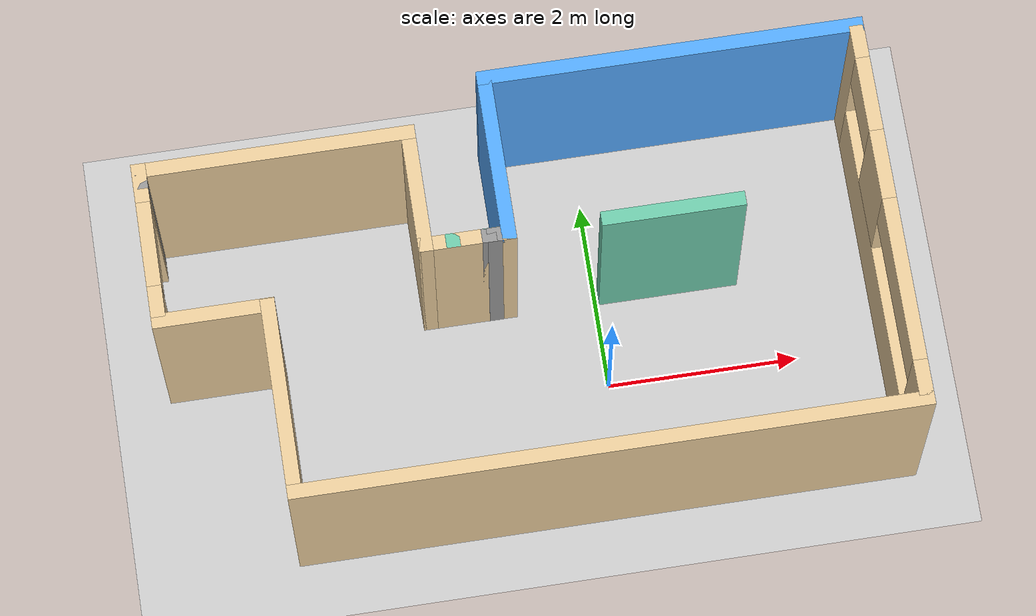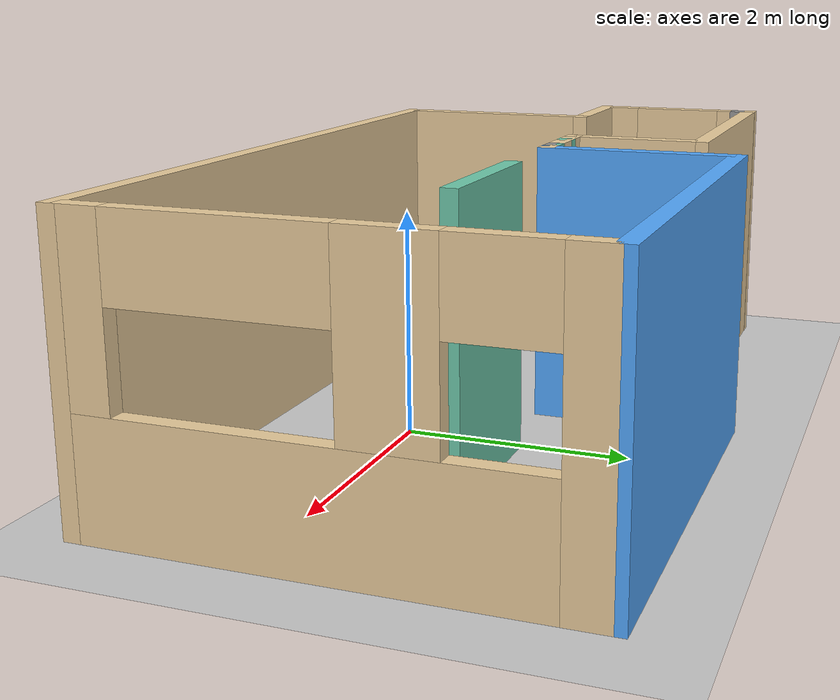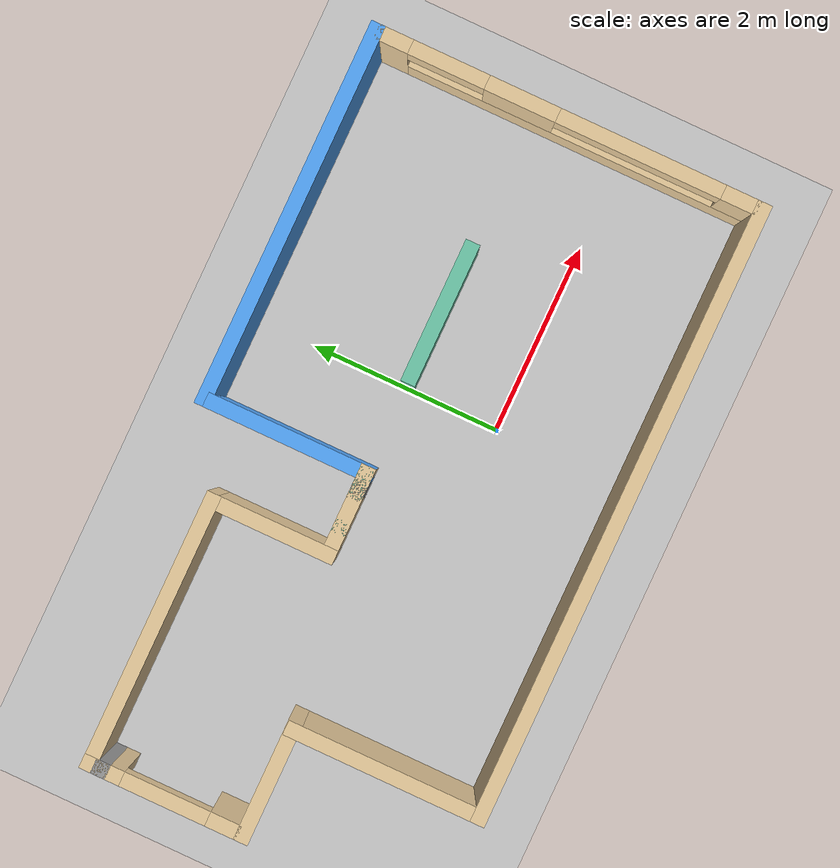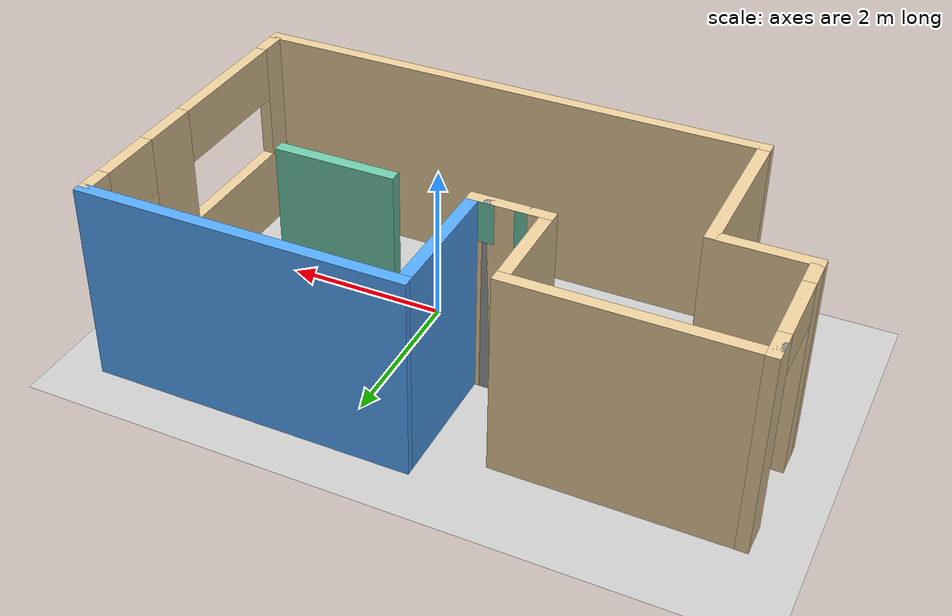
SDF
<sdf version="1.6">
 <world name="default">
  <model name="ground_plane">
   <static>1</static>
   <link name="link">
    <collision name="collision">
     <geometry><plane><normal>0 0 1</normal><size>100 100</size></plane></geometry>
     <surface>
      <contact><collide_bitmask>65535</collide_bitmask></contact>
      <friction><ode><mu>100</mu><mu2>50</mu2></ode></friction>
     </surface>
    </collision>
    <visual name="visual">
     <cast_shadows>0</cast_shadows>
     <geometry><plane><normal>0 0 1</normal><size>100 100</size></plane></geometry>
     <material>
      <script><uri>file://media/materials/scripts/gazebo.material</uri><name>Gazebo/Grey</name></script>
     </material>
    </visual>
   </link>
  </model>
  <model name="my_building">
   <link name="Wall_0">
    <pose>-2.275 1.54483 0 0 -0 0</pose>
    <visual name="Wall_0_Visual">
     <pose>0 0 1.25 0 -0 0</pose>
     <geometry><box><size>2.75 0.15 2.5</size></box></geometry>
     <material>
      <script><uri>file://media/materials/scripts/gazebo.material</uri><name>Gazebo/Grey</name></script>
      <ambient>0.921569 0.807843 0.615686 1</ambient>
      <shader type="pixel"/>
      <diffuse>0.7 0.7 0.7 1</diffuse>
      <specular>0.01 0.01 0.01 1</specular>
      <emissive>0 0 0 1</emissive>
     </material>
     <meta><layer>0</layer></meta>
    </visual>
    <collision name="Wall_0_Collision">
     <pose>0 0 1.25 0 -0 0</pose>
     <geometry><box><size>2.75 0.15 2.5</size></box></geometry>
     <surface>
      <friction>
       <ode><mu>1</mu><mu2>1</mu2><fdir1>0 0 0</fdir1><slip1>0</slip1><slip2>0</slip2></ode>
       <torsional>
        <coefficient>1</coefficient>
        <patch_radius>0</patch_radius>
        <surface_radius>0</surface_radius>
        <use_patch_radius>1</use_patch_radius>
        <ode><slip>0</slip></ode>
       </torsional>
      </friction>
      <bounce><restitution_coefficient>0</restitution_coefficient><threshold>1e+06</threshold></bounce>
      <contact>
       <collide_without_contact>0</collide_without_contact>
       <collide_without_contact_bitmask>1</collide_without_contact_bitmask>
       <collide_bitmask>1</collide_bitmask>
       <ode>
        <soft_cfm>0</soft_cfm>
        <soft_erp>0.2</soft_erp>
        <kp>1e+13</kp>
        <kd>1</kd>
        <max_vel>0.01</max_vel>
        <min_depth>0</min_depth>
       </ode>
       <bullet>
        <split_impulse>1</split_impulse>
        <split_impulse_penetration_threshold>-0.01</split_impulse_penetration_threshold>
        <soft_cfm>0</soft_cfm>
        <soft_erp>0.2</soft_erp>
        <kp>1e+13</kp>
        <kd>1</kd>
       </bullet>
      </contact>
     </surface>
    </collision>
   </link>
   <link name="Wall_1">
    <pose>-0.975 0.875 0 0 0 -1.5708</pose>
    <visual name="Wall_1_Visual">
     <pose>0 0 1.25 0 -0 0</pose>
     <geometry><box><size>1.25 0.15 2.5</size></box></geometry>
     <material>
      <script><uri>file://media/materials/scripts/gazebo.material</uri><name>Gazebo/Grey</name></script>
      <ambient>0.921569 0.807843 0.615686 1</ambient>
      <shader type="pixel"/>
      <diffuse>0.7 0.7 0.7 1</diffuse>
      <specular>0.01 0.01 0.01 1</specular>
      <emissive>0 0 0 1</emissive>
     </material>
     <meta><layer>0</layer></meta>
    </visual>
    <collision name="Wall_1_Collision">
     <pose>0 0 1.25 0 -0 0</pose>
     <geometry><box><size>1.25 0.15 2.5</size></box></geometry>
     <surface>
      <friction>
       <ode><mu>1</mu><mu2>1</mu2><fdir1>0 0 0</fdir1><slip1>0</slip1><slip2>0</slip2></ode>
       <torsional>
        <coefficient>1</coefficient>
        <patch_radius>0</patch_radius>
        <surface_radius>0</surface_radius>
        <use_patch_radius>1</use_patch_radius>
        <ode><slip>0</slip></ode>
       </torsional>
      </friction>
      <bounce><restitution_coefficient>0</restitution_coefficient><threshold>1e+06</threshold></bounce>
      <contact>
       <collide_without_contact>0</collide_without_contact>
       <collide_without_contact_bitmask>1</collide_without_contact_bitmask>
       <collide_bitmask>1</collide_bitmask>
       <ode>
        <soft_cfm>0</soft_cfm>
        <soft_erp>0.2</soft_erp>
        <kp>1e+13</kp>
        <kd>1</kd>
        <max_vel>0.01</max_vel>
        <min_depth>0</min_depth>
       </ode>
       <bullet>
        <split_impulse>1</split_impulse>
        <split_impulse_penetration_threshold>-0.01</split_impulse_penetration_threshold>
        <soft_cfm>0</soft_cfm>
        <soft_erp>0.2</soft_erp>
        <kp>1e+13</kp>
        <kd>1</kd>
       </bullet>
      </contact>
     </surface>
    </collision>
   </link>
   <link name="Wall_10">
    <pose>-3.725 1.425 0 0 -0 0</pose>
    <visual name="Wall_10_Visual">
     <pose>0 0 1.25 0 -0 0</pose>
     <geometry><box><size>0.15 0.15 2.5</size></box></geometry>
     <material>
      <script><uri>file://media/materials/scripts/gazebo.material</uri><name>Gazebo/Grey</name></script>
      <ambient>1 1 1 1</ambient>
      <shader type="pixel"/>
      <diffuse>0.7 0.7 0.7 1</diffuse>
      <specular>0.01 0.01 0.01 1</specular>
      <emissive>0 0 0 1</emissive>
     </material>
     <meta><layer>0</layer></meta>
    </visual>
    <collision name="Wall_10_Collision">
     <pose>0 0 1.25 0 -0 0</pose>
     <geometry><box><size>0.15 0.15 2.5</size></box></geometry>
     <surface>
      <friction>
       <ode><mu>1</mu><mu2>1</mu2><fdir1>0 0 0</fdir1><slip1>0</slip1><slip2>0</slip2></ode>
       <torsional>
        <coefficient>1</coefficient>
        <patch_radius>0</patch_radius>
        <surface_radius>0</surface_radius>
        <use_patch_radius>1</use_patch_radius>
        <ode><slip>0</slip></ode>
       </torsional>
      </friction>
      <bounce><restitution_coefficient>0</restitution_coefficient><threshold>1e+06</threshold></bounce>
      <contact>
       <collide_without_contact>0</collide_without_contact>
       <collide_without_contact_bitmask>1</collide_without_contact_bitmask>
       <collide_bitmask>1</collide_bitmask>
       <ode>
        <soft_cfm>0</soft_cfm>
        <soft_erp>0.2</soft_erp>
        <kp>1e+13</kp>
        <kd>1</kd>
        <max_vel>0.01</max_vel>
        <min_depth>0</min_depth>
       </ode>
       <bullet>
        <split_impulse>1</split_impulse>
        <split_impulse_penetration_threshold>-0.01</split_impulse_penetration_threshold>
        <soft_cfm>0</soft_cfm>
        <soft_erp>0.2</soft_erp>
        <kp>1e+13</kp>
        <kd>1</kd>
       </bullet>
      </contact>
     </surface>
    </collision>
   </link>
   <link name="Wall_12">
    <pose>-3.725 0.796381 0 0 -0 1.5708</pose>
    <visual name="Wall_12_Visual_0">
     <pose>-0.658151 0 1.25 0 -0 0</pose>
     <geometry><box><size>0.333697 0.15 2.5</size></box></geometry>
     <material>
      <script><uri>file://media/materials/scripts/gazebo.material</uri><name>Gazebo/Grey</name></script>
      <ambient>0.921569 0.807843 0.615686 1</ambient>
      <shader type="pixel"/>
      <diffuse>0.7 0.7 0.7 1</diffuse>
      <specular>0.01 0.01 0.01 1</specular>
      <emissive>0 0 0 1</emissive>
     </material>
     <meta><layer>0</layer></meta>
    </visual>
    <visual name="Wall_12_Visual_1">
     <pose>0.616849 0 1.25 0 -0 0</pose>
     <geometry><box><size>0.416303 0.15 2.5</size></box></geometry>
     <material>
      <script><uri>file://media/materials/scripts/gazebo.material</uri><name>Gazebo/Grey</name></script>
      <ambient>0.921569 0.807843 0.615686 1</ambient>
      <shader type="pixel"/>
      <diffuse>0.7 0.7 0.7 1</diffuse>
      <specular>0.01 0.01 0.01 1</specular>
      <emissive>0 0 0 1</emissive>
     </material>
     <meta><layer>0</layer></meta>
    </visual>
    <visual name="Wall_12_Visual_2">
     <pose>-0.041303 0 2.25 0 -0 0</pose>
     <geometry><box><size>0.9 0.15 0.5</size></box></geometry>
     <material>
      <script><uri>file://media/materials/scripts/gazebo.material</uri><name>Gazebo/Grey</name></script>
      <ambient>0.921569 0.807843 0.615686 1</ambient>
      <shader type="pixel"/>
      <diffuse>0.7 0.7 0.7 1</diffuse>
      <specular>0.01 0.01 0.01 1</specular>
      <emissive>0 0 0 1</emissive>
     </material>
     <meta><layer>0</layer></meta>
    </visual>
    <collision name="Wall_12_Collision_0">
     <pose>-0.658151 0 1.25 0 -0 0</pose>
     <geometry><box><size>0.333697 0.15 2.5</size></box></geometry>
     <surface>
      <friction>
       <ode><mu>1</mu><mu2>1</mu2><fdir1>0 0 0</fdir1><slip1>0</slip1><slip2>0</slip2></ode>
       <torsional>
        <coefficient>1</coefficient>
        <patch_radius>0</patch_radius>
        <surface_radius>0</surface_radius>
        <use_patch_radius>1</use_patch_radius>
        <ode><slip>0</slip></ode>
       </torsional>
      </friction>
      <bounce><restitution_coefficient>0</restitution_coefficient><threshold>1e+06</threshold></bounce>
      <contact>
       <collide_without_contact>0</collide_without_contact>
       <collide_without_contact_bitmask>1</collide_without_contact_bitmask>
       <collide_bitmask>1</collide_bitmask>
       <ode>
        <soft_cfm>0</soft_cfm>
        <soft_erp>0.2</soft_erp>
        <kp>1e+13</kp>
        <kd>1</kd>
        <max_vel>0.01</max_vel>
        <min_depth>0</min_depth>
       </ode>
       <bullet>
        <split_impulse>1</split_impulse>
        <split_impulse_penetration_threshold>-0.01</split_impulse_penetration_threshold>
        <soft_cfm>0</soft_cfm>
        <soft_erp>0.2</soft_erp>
        <kp>1e+13</kp>
        <kd>1</kd>
       </bullet>
      </contact>
     </surface>
    </collision>
    <collision name="Wall_12_Collision_2">
     <pose>-0.041303 0 2.25 0 -0 0</pose>
     <geometry><box><size>0.9 0.15 0.5</size></box></geometry>
     <surface>
      <friction>
       <ode><mu>1</mu><mu2>1</mu2><fdir1>0 0 0</fdir1><slip1>0</slip1><slip2>0</slip2></ode>
       <torsional>
        <coefficient>1</coefficient>
        <patch_radius>0</patch_radius>
        <surface_radius>0</surface_radius>
        <use_patch_radius>1</use_patch_radius>
        <ode><slip>0</slip></ode>
       </torsional>
      </friction>
      <bounce><restitution_coefficient>0</restitution_coefficient><threshold>1e+06</threshold></bounce>
      <contact>
       <collide_without_contact>0</collide_without_contact>
       <collide_without_contact_bitmask>1</collide_without_contact_bitmask>
       <collide_bitmask>1</collide_bitmask>
       <ode>
        <soft_cfm>0</soft_cfm>
        <soft_erp>0.2</soft_erp>
        <kp>1e+13</kp>
        <kd>1</kd>
        <max_vel>0.01</max_vel>
        <min_depth>0</min_depth>
       </ode>
       <bullet>
        <split_impulse>1</split_impulse>
        <split_impulse_penetration_threshold>-0.01</split_impulse_penetration_threshold>
        <soft_cfm>0</soft_cfm>
        <soft_erp>0.2</soft_erp>
        <kp>1e+13</kp>
        <kd>1</kd>
       </bullet>
      </contact>
     </surface>
    </collision>
    <collision name="Wall_12_Collision_1">
     <pose>0.616849 0 1.25 0 -0 0</pose>
     <geometry><box><size>0.416303 0.15 2.5</size></box></geometry>
     <surface>
      <friction>
       <ode><mu>1</mu><mu2>1</mu2><fdir1>0 0 0</fdir1><slip1>0</slip1><slip2>0</slip2></ode>
       <torsional>
        <coefficient>1</coefficient>
        <patch_radius>0</patch_radius>
        <surface_radius>0</surface_radius>
        <use_patch_radius>1</use_patch_radius>
        <ode><slip>0</slip></ode>
       </torsional>
      </friction>
      <bounce><restitution_coefficient>0</restitution_coefficient><threshold>1e+06</threshold></bounce>
      <contact>
       <collide_without_contact>0</collide_without_contact>
       <collide_without_contact_bitmask>1</collide_without_contact_bitmask>
       <collide_bitmask>1</collide_bitmask>
       <ode>
        <soft_cfm>0</soft_cfm>
        <soft_erp>0.2</soft_erp>
        <kp>1e+13</kp>
        <kd>1</kd>
        <max_vel>0.01</max_vel>
        <min_depth>0</min_depth>
       </ode>
       <bullet>
        <split_impulse>1</split_impulse>
        <split_impulse_penetration_threshold>-0.01</split_impulse_penetration_threshold>
        <soft_cfm>0</soft_cfm>
        <soft_erp>0.2</soft_erp>
        <kp>1e+13</kp>
        <kd>1</kd>
       </bullet>
      </contact>
     </surface>
    </collision>
   </link>
   <link name="Wall_14">
    <pose>1.09102 0.325002 0 0 -0 3.14159</pose>
    <inertial>
     <inertia><ixx>0</ixx><ixy>0</ixy><ixz>0</ixz><iyy>0</iyy><iyz>0</iyz><izz>0</izz></inertia>
     <mass>0</mass>
    </inertial>
    <visual name="Wall_14_Visual_0">
     <pose>-0.465286 0 1.25 0 -0 0</pose>
     <geometry><box><size>1.47793 0.15 2.5</size></box></geometry>
     <material>
      <script><uri>file://media/materials/scripts/gazebo.material</uri><name>Gazebo/Grey</name></script>
      <ambient>0.435294 0.796078 0.67451 1</ambient>
      <shader type="pixel"/>
      <diffuse>0.7 0.7 0.7 1</diffuse>
      <specular>0.01 0.01 0.01 1</specular>
      <emissive>0 0 0 1</emissive>
     </material>
     <meta><layer>0</layer></meta>
    </visual>
    <visual name="Wall_14_Visual_1">
     <pose>1.78401 0 1.25 0 -0 0</pose>
     <geometry><box><size>0.143682 0.15 2.5</size></box></geometry>
     <material>
      <script><uri>file://media/materials/scripts/gazebo.material</uri><name>Gazebo/Grey</name></script>
      <ambient>0.435294 0.796078 0.67451 1</ambient>
      <shader type="pixel"/>
      <diffuse>0.7 0.7 0.7 1</diffuse>
      <specular>0.01 0.01 0.01 1</specular>
      <emissive>0 0 0 1</emissive>
     </material>
     <meta><layer>0</layer></meta>
    </visual>
    <visual name="Wall_14_Visual_2">
     <pose>1.31873 0 2.25 0 -0 0</pose>
     <geometry><box><size>0.328347 0.15 0.5</size></box></geometry>
     <material>
      <script><uri>file://media/materials/scripts/gazebo.material</uri><name>Gazebo/Grey</name></script>
      <ambient>0.435294 0.796078 0.67451 1</ambient>
      <shader type="pixel"/>
      <diffuse>0.7 0.7 0.7 1</diffuse>
      <specular>0.01 0.01 0.01 1</specular>
      <emissive>0 0 0 1</emissive>
     </material>
     <meta><layer>0</layer></meta>
    </visual>
    <collision name="Wall_14_Collision_0">
     <pose>-0.465286 0 1.25 0 -0 0</pose>
     <geometry><box><size>1.47793 0.15 2.5</size></box></geometry>
     <surface>
      <friction>
       <ode><mu>1</mu><mu2>1</mu2><fdir1>0 0 0</fdir1><slip1>0</slip1><slip2>0</slip2></ode>
       <torsional>
        <coefficient>1</coefficient>
        <patch_radius>0</patch_radius>
        <surface_radius>0</surface_radius>
        <use_patch_radius>1</use_patch_radius>
        <ode><slip>0</slip></ode>
       </torsional>
      </friction>
      <bounce><restitution_coefficient>0</restitution_coefficient><threshold>1e+06</threshold></bounce>
      <contact>
       <collide_without_contact>0</collide_without_contact>
       <collide_without_contact_bitmask>1</collide_without_contact_bitmask>
       <collide_bitmask>1</collide_bitmask>
       <ode>
        <soft_cfm>0</soft_cfm>
        <soft_erp>0.2</soft_erp>
        <kp>1e+13</kp>
        <kd>1</kd>
        <max_vel>0.01</max_vel>
        <min_depth>0</min_depth>
       </ode>
       <bullet>
        <split_impulse>1</split_impulse>
        <split_impulse_penetration_threshold>-0.01</split_impulse_penetration_threshold>
        <soft_cfm>0</soft_cfm>
        <soft_erp>0.2</soft_erp>
        <kp>1e+13</kp>
        <kd>1</kd>
       </bullet>
      </contact>
     </surface>
    </collision>
    <collision name="Wall_14_Collision_1">
     <pose>1.78401 0 1.25 0 -0 0</pose>
     <geometry><box><size>0.143682 0.15 2.5</size></box></geometry>
     <surface>
      <friction>
       <ode><mu>1</mu><mu2>1</mu2><fdir1>0 0 0</fdir1><slip1>0</slip1><slip2>0</slip2></ode>
       <torsional>
        <coefficient>1</coefficient>
        <patch_radius>0</patch_radius>
        <surface_radius>0</surface_radius>
        <use_patch_radius>1</use_patch_radius>
        <ode><slip>0</slip></ode>
       </torsional>
      </friction>
      <bounce><restitution_coefficient>0</restitution_coefficient><threshold>1e+06</threshold></bounce>
      <contact>
       <collide_without_contact>0</collide_without_contact>
       <collide_without_contact_bitmask>1</collide_without_contact_bitmask>
       <collide_bitmask>1</collide_bitmask>
       <ode>
        <soft_cfm>0</soft_cfm>
        <soft_erp>0.2</soft_erp>
        <kp>1e+13</kp>
        <kd>1</kd>
        <max_vel>0.01</max_vel>
        <min_depth>0</min_depth>
       </ode>
       <bullet>
        <split_impulse>1</split_impulse>
        <split_impulse_penetration_threshold>-0.01</split_impulse_penetration_threshold>
        <soft_cfm>0</soft_cfm>
        <soft_erp>0.2</soft_erp>
        <kp>1e+13</kp>
        <kd>1</kd>
       </bullet>
      </contact>
     </surface>
    </collision>
    <collision name="Wall_14_Collision_2">
     <pose>1.31873 0 2.25 0 -0 0</pose>
     <geometry><box><size>0.328347 0.15 0.5</size></box></geometry>
     <surface>
      <friction>
       <ode><mu>1</mu><mu2>1</mu2><fdir1>0 0 0</fdir1><slip1>0</slip1><slip2>0</slip2></ode>
       <torsional>
        <coefficient>1</coefficient>
        <patch_radius>0</patch_radius>
        <surface_radius>0</surface_radius>
        <use_patch_radius>1</use_patch_radius>
        <ode><slip>0</slip></ode>
       </torsional>
      </friction>
      <bounce><restitution_coefficient>0</restitution_coefficient><threshold>1e+06</threshold></bounce>
      <contact>
       <collide_without_contact>0</collide_without_contact>
       <collide_without_contact_bitmask>1</collide_without_contact_bitmask>
       <collide_bitmask>1</collide_bitmask>
       <ode>
        <soft_cfm>0</soft_cfm>
        <soft_erp>0.2</soft_erp>
        <kp>1e+13</kp>
        <kd>1</kd>
        <max_vel>0.01</max_vel>
        <min_depth>0</min_depth>
       </ode>
       <bullet>
        <split_impulse>1</split_impulse>
        <split_impulse_penetration_threshold>-0.01</split_impulse_penetration_threshold>
        <soft_cfm>0</soft_cfm>
        <soft_erp>0.2</soft_erp>
        <kp>1e+13</kp>
        <kd>1</kd>
       </bullet>
      </contact>
     </surface>
    </collision>
   </link>
   <link name="Wall_15">
    <pose>-0.271821 0.323809 0 0 -0 0</pose>
    <visual name="Wall_15_Visual">
     <pose>0 0 1.25 0 -0 0</pose>
     <geometry><box><size>0.15 0.15 2.5</size></box></geometry>
     <material>
      <script><uri>file://media/materials/scripts/gazebo.material</uri><name>Gazebo/Grey</name></script>
      <ambient>1 1 1 1</ambient>
      <shader type="pixel"/>
      <diffuse>0.7 0.7 0.7 1</diffuse>
      <specular>0.01 0.01 0.01 1</specular>
      <emissive>0 0 0 1</emissive>
     </material>
     <meta><layer>0</layer></meta>
    </visual>
    <collision name="Wall_15_Collision">
     <pose>0 0 1.25 0 -0 0</pose>
     <geometry><box><size>0.15 0.15 2.5</size></box></geometry>
     <surface>
      <friction>
       <ode><mu>1</mu><mu2>1</mu2><fdir1>0 0 0</fdir1><slip1>0</slip1><slip2>0</slip2></ode>
       <torsional>
        <coefficient>1</coefficient>
        <patch_radius>0</patch_radius>
        <surface_radius>0</surface_radius>
        <use_patch_radius>1</use_patch_radius>
        <ode><slip>0</slip></ode>
       </torsional>
      </friction>
      <bounce><restitution_coefficient>0</restitution_coefficient><threshold>1e+06</threshold></bounce>
      <contact>
       <collide_without_contact>0</collide_without_contact>
       <collide_without_contact_bitmask>1</collide_without_contact_bitmask>
       <collide_bitmask>1</collide_bitmask>
       <ode>
        <soft_cfm>0</soft_cfm>
        <soft_erp>0.2</soft_erp>
        <kp>1e+13</kp>
        <kd>1</kd>
        <max_vel>0.01</max_vel>
        <min_depth>0</min_depth>
       </ode>
       <bullet>
        <split_impulse>1</split_impulse>
        <split_impulse_penetration_threshold>-0.01</split_impulse_penetration_threshold>
        <soft_cfm>0</soft_cfm>
        <soft_erp>0.2</soft_erp>
        <kp>1e+13</kp>
        <kd>1</kd>
       </bullet>
      </contact>
     </surface>
    </collision>
   </link>
   <link name="Wall_16">
    <pose>-0.325676 0.325 0 0 -0 0</pose>
    <visual name="Wall_16_Visual">
     <pose>0 0 1.25 0 -0 0</pose>
     <geometry><box><size>0.15 0.15 2.5</size></box></geometry>
     <material>
      <script><uri>file://media/materials/scripts/gazebo.material</uri><name>Gazebo/Grey</name></script>
      <ambient>1 1 1 1</ambient>
      <shader type="pixel"/>
      <diffuse>0.7 0.7 0.7 1</diffuse>
      <specular>0.01 0.01 0.01 1</specular>
      <emissive>0 0 0 1</emissive>
     </material>
     <meta><layer>0</layer></meta>
    </visual>
    <collision name="Wall_16_Collision">
     <pose>0 0 1.25 0 -0 0</pose>
     <geometry><box><size>0.15 0.15 2.5</size></box></geometry>
     <surface>
      <friction>
       <ode><mu>1</mu><mu2>1</mu2><fdir1>0 0 0</fdir1><slip1>0</slip1><slip2>0</slip2></ode>
       <torsional>
        <coefficient>1</coefficient>
        <patch_radius>0</patch_radius>
        <surface_radius>0</surface_radius>
        <use_patch_radius>1</use_patch_radius>
        <ode><slip>0</slip></ode>
       </torsional>
      </friction>
      <bounce><restitution_coefficient>0</restitution_coefficient><threshold>1e+06</threshold></bounce>
      <contact>
       <collide_without_contact>0</collide_without_contact>
       <collide_without_contact_bitmask>1</collide_without_contact_bitmask>
       <collide_bitmask>1</collide_bitmask>
       <ode>
        <soft_cfm>0</soft_cfm>
        <soft_erp>0.2</soft_erp>
        <kp>1e+13</kp>
        <kd>1</kd>
        <max_vel>0.01</max_vel>
        <min_depth>0</min_depth>
       </ode>
       <bullet>
        <split_impulse>1</split_impulse>
        <split_impulse_penetration_threshold>-0.01</split_impulse_penetration_threshold>
        <soft_cfm>0</soft_cfm>
        <soft_erp>0.2</soft_erp>
        <kp>1e+13</kp>
        <kd>1</kd>
       </bullet>
      </contact>
     </surface>
    </collision>
   </link>
   <link name="Wall_2">
    <pose>-0.55 0.325 0 0 -0 0</pose>
    <visual name="Wall_2_Visual">
     <pose>0 0 1.25 0 -0 0</pose>
     <geometry><box><size>1 0.15 2.5</size></box></geometry>
     <material>
      <script><uri>file://media/materials/scripts/gazebo.material</uri><name>Gazebo/Grey</name></script>
      <ambient>0.921569 0.807843 0.615686 1</ambient>
      <shader type="pixel"/>
      <diffuse>0.7 0.7 0.7 1</diffuse>
      <specular>0.01 0.01 0.01 1</specular>
      <emissive>0 0 0 1</emissive>
     </material>
     <meta><layer>0</layer></meta>
    </visual>
    <collision name="Wall_2_Collision">
     <pose>0 0 1.25 0 -0 0</pose>
     <geometry><box><size>1 0.15 2.5</size></box></geometry>
     <surface>
      <friction>
       <ode><mu>1</mu><mu2>1</mu2><fdir1>0 0 0</fdir1><slip1>0</slip1><slip2>0</slip2></ode>
       <torsional>
        <coefficient>1</coefficient>
        <patch_radius>0</patch_radius>
        <surface_radius>0</surface_radius>
        <use_patch_radius>1</use_patch_radius>
        <ode><slip>0</slip></ode>
       </torsional>
      </friction>
      <bounce><restitution_coefficient>0</restitution_coefficient><threshold>1e+06</threshold></bounce>
      <contact>
       <collide_without_contact>0</collide_without_contact>
       <collide_without_contact_bitmask>1</collide_without_contact_bitmask>
       <collide_bitmask>1</collide_bitmask>
       <ode>
        <soft_cfm>0</soft_cfm>
        <soft_erp>0.2</soft_erp>
        <kp>1e+13</kp>
        <kd>1</kd>
        <max_vel>0.01</max_vel>
        <min_depth>0</min_depth>
       </ode>
       <bullet>
        <split_impulse>1</split_impulse>
        <split_impulse_penetration_threshold>-0.01</split_impulse_penetration_threshold>
        <soft_cfm>0</soft_cfm>
        <soft_erp>0.2</soft_erp>
        <kp>1e+13</kp>
        <kd>1</kd>
       </bullet>
      </contact>
     </surface>
    </collision>
   </link>
   <link name="Wall_3">
    <pose>-0.125 1.125 0 0 -0 1.5708</pose>
    <visual name="Wall_3_Visual">
     <pose>0 0 1.25 0 -0 0</pose>
     <geometry><box><size>1.75 0.15 2.5</size></box></geometry>
     <material>
      <script><uri>file://media/materials/scripts/gazebo.material</uri><name>Gazebo/Grey</name></script>
      <ambient>0.333333 0.666667 1 1</ambient>
      <shader type="pixel"/>
      <diffuse>0.7 0.7 0.7 1</diffuse>
      <specular>0.01 0.01 0.01 1</specular>
      <emissive>0 0 0 1</emissive>
     </material>
     <meta><layer>0</layer></meta>
    </visual>
    <collision name="Wall_3_Collision">
     <pose>0 0 1.25 0 -0 0</pose>
     <geometry><box><size>1.75 0.15 2.5</size></box></geometry>
     <surface>
      <friction>
       <ode><mu>1</mu><mu2>1</mu2><fdir1>0 0 0</fdir1><slip1>0</slip1><slip2>0</slip2></ode>
       <torsional>
        <coefficient>1</coefficient>
        <patch_radius>0</patch_radius>
        <surface_radius>0</surface_radius>
        <use_patch_radius>1</use_patch_radius>
        <ode><slip>0</slip></ode>
       </torsional>
      </friction>
      <bounce><restitution_coefficient>0</restitution_coefficient><threshold>1e+06</threshold></bounce>
      <contact>
       <collide_without_contact>0</collide_without_contact>
       <collide_without_contact_bitmask>1</collide_without_contact_bitmask>
       <collide_bitmask>1</collide_bitmask>
       <ode>
        <soft_cfm>0</soft_cfm>
        <soft_erp>0.2</soft_erp>
        <kp>1e+13</kp>
        <kd>1</kd>
        <max_vel>0.01</max_vel>
        <min_depth>0</min_depth>
       </ode>
       <bullet>
        <split_impulse>1</split_impulse>
        <split_impulse_penetration_threshold>-0.01</split_impulse_penetration_threshold>
        <soft_cfm>0</soft_cfm>
        <soft_erp>0.2</soft_erp>
        <kp>1e+13</kp>
        <kd>1</kd>
       </bullet>
      </contact>
     </surface>
    </collision>
   </link>
   <link name="Wall_4">
    <pose>1.8 2.01319 0 0 -0 0</pose>
    <visual name="Wall_4_Visual">
     <pose>0 0 1.25 0 -0 0</pose>
     <geometry><box><size>4 0.15 2.5</size></box></geometry>
     <material>
      <script><uri>file://media/materials/scripts/gazebo.material</uri><name>Gazebo/Grey</name></script>
      <ambient>0.333333 0.666667 1 1</ambient>
      <shader type="pixel"/>
      <diffuse>0.7 0.7 0.7 1</diffuse>
      <specular>0.01 0.01 0.01 1</specular>
      <emissive>0 0 0 1</emissive>
     </material>
     <meta><layer>0</layer></meta>
    </visual>
    <collision name="Wall_4_Collision">
     <pose>0 0 1.25 0 -0 0</pose>
     <geometry><box><size>4 0.15 2.5</size></box></geometry>
     <surface>
      <friction>
       <ode><mu>1</mu><mu2>1</mu2><fdir1>0 0 0</fdir1><slip1>0</slip1><slip2>0</slip2></ode>
       <torsional>
        <coefficient>1</coefficient>
        <patch_radius>0</patch_radius>
        <surface_radius>0</surface_radius>
        <use_patch_radius>1</use_patch_radius>
        <ode><slip>0</slip></ode>
       </torsional>
      </friction>
      <bounce><restitution_coefficient>0</restitution_coefficient><threshold>1e+06</threshold></bounce>
      <contact>
       <collide_without_contact>0</collide_without_contact>
       <collide_without_contact_bitmask>1</collide_without_contact_bitmask>
       <collide_bitmask>1</collide_bitmask>
       <ode>
        <soft_cfm>0</soft_cfm>
        <soft_erp>0.2</soft_erp>
        <kp>1e+13</kp>
        <kd>1</kd>
        <max_vel>0.01</max_vel>
        <min_depth>0</min_depth>
       </ode>
       <bullet>
        <split_impulse>1</split_impulse>
        <split_impulse_penetration_threshold>-0.01</split_impulse_penetration_threshold>
        <soft_cfm>0</soft_cfm>
        <soft_erp>0.2</soft_erp>
        <kp>1e+13</kp>
        <kd>1</kd>
       </bullet>
      </contact>
     </surface>
    </collision>
   </link>
   <link name="Wall_5">
    <pose>3.725 0 0 0 0 -1.5708</pose>
    <visual name="Wall_5_Visual_0">
     <pose>-1.82257 0 1.25 0 -0 0</pose>
     <geometry><box><size>0.354865 0.15 2.5</size></box></geometry>
     <material>
      <script><uri>file://media/materials/scripts/gazebo.material</uri><name>Gazebo/Grey</name></script>
      <ambient>0.921569 0.807843 0.615686 1</ambient>
      <shader type="pixel"/>
      <diffuse>0.7 0.7 0.7 1</diffuse>
      <specular>0.01 0.01 0.01 1</specular>
      <emissive>0 0 0 1</emissive>
     </material>
     <meta><layer>0</layer></meta>
    </visual>
    <visual name="Wall_5_Visual_2">
     <pose>-0.473451 0 1.75 0 -0 0</pose>
     <geometry><box><size>0.743368 0.15 1.5</size></box></geometry>
     <material>
      <script><uri>file://media/materials/scripts/gazebo.material</uri><name>Gazebo/Grey</name></script>
      <ambient>0.921569 0.807843 0.615686 1</ambient>
      <shader type="pixel"/>
      <diffuse>0.7 0.7 0.7 1</diffuse>
      <specular>0.01 0.01 0.01 1</specular>
      <emissive>0 0 0 1</emissive>
     </material>
     <meta><layer>0</layer></meta>
    </visual>
    <visual name="Wall_5_Visual_1">
     <pose>0.177432 0 0.5 0 -0 0</pose>
     <geometry><box><size>3.64513 0.15 1</size></box></geometry>
     <material>
      <script><uri>file://media/materials/scripts/gazebo.material</uri><name>Gazebo/Grey</name></script>
      <ambient>0.921569 0.807843 0.615686 1</ambient>
      <shader type="pixel"/>
      <diffuse>0.7 0.7 0.7 1</diffuse>
      <specular>0.01 0.01 0.01 1</specular>
      <emissive>0 0 0 1</emissive>
     </material>
     <meta><layer>0</layer></meta>
    </visual>
    <visual name="Wall_5_Visual_4">
     <pose>-1.24514 0 2.15 0 -0 0</pose>
     <geometry><box><size>0.8 0.15 0.7</size></box></geometry>
     <material>
      <script><uri>file://media/materials/scripts/gazebo.material</uri><name>Gazebo/Grey</name></script>
      <ambient>0.921569 0.807843 0.615686 1</ambient>
      <shader type="pixel"/>
      <diffuse>0.7 0.7 0.7 1</diffuse>
      <specular>0.01 0.01 0.01 1</specular>
      <emissive>0 0 0 1</emissive>
     </material>
     <meta><layer>0</layer></meta>
    </visual>
    <visual name="Wall_5_Visual_3">
     <pose>1.81412 0 1.75 0 -0 0</pose>
     <geometry><box><size>0.371767 0.15 1.5</size></box></geometry>
     <material>
      <script><uri>file://media/materials/scripts/gazebo.material</uri><name>Gazebo/Grey</name></script>
      <ambient>0.921569 0.807843 0.615686 1</ambient>
      <shader type="pixel"/>
      <diffuse>0.7 0.7 0.7 1</diffuse>
      <specular>0.01 0.01 0.01 1</specular>
      <emissive>0 0 0 1</emissive>
     </material>
     <meta><layer>0</layer></meta>
    </visual>
    <visual name="Wall_5_Visual_5">
     <pose>0.763233 0 2.15 0 -0 0</pose>
     <geometry><box><size>1.73 0.15 0.7</size></box></geometry>
     <material>
      <script><uri>file://media/materials/scripts/gazebo.material</uri><name>Gazebo/Grey</name></script>
      <ambient>0.921569 0.807843 0.615686 1</ambient>
      <shader type="pixel"/>
      <diffuse>0.7 0.7 0.7 1</diffuse>
      <specular>0.01 0.01 0.01 1</specular>
      <emissive>0 0 0 1</emissive>
     </material>
     <meta><layer>0</layer></meta>
    </visual>
    <collision name="Wall_5_Collision_2">
     <pose>-0.473451 0 1.75 0 -0 0</pose>
     <geometry><box><size>0.743368 0.15 1.5</size></box></geometry>
     <surface>
      <friction>
       <ode><mu>1</mu><mu2>1</mu2><fdir1>0 0 0</fdir1><slip1>0</slip1><slip2>0</slip2></ode>
       <torsional>
        <coefficient>1</coefficient>
        <patch_radius>0</patch_radius>
        <surface_radius>0</surface_radius>
        <use_patch_radius>1</use_patch_radius>
        <ode><slip>0</slip></ode>
       </torsional>
      </friction>
      <bounce><restitution_coefficient>0</restitution_coefficient><threshold>1e+06</threshold></bounce>
      <contact>
       <collide_without_contact>0</collide_without_contact>
       <collide_without_contact_bitmask>1</collide_without_contact_bitmask>
       <collide_bitmask>1</collide_bitmask>
       <ode>
        <soft_cfm>0</soft_cfm>
        <soft_erp>0.2</soft_erp>
        <kp>1e+13</kp>
        <kd>1</kd>
        <max_vel>0.01</max_vel>
        <min_depth>0</min_depth>
       </ode>
       <bullet>
        <split_impulse>1</split_impulse>
        <split_impulse_penetration_threshold>-0.01</split_impulse_penetration_threshold>
        <soft_cfm>0</soft_cfm>
        <soft_erp>0.2</soft_erp>
        <kp>1e+13</kp>
        <kd>1</kd>
       </bullet>
      </contact>
     </surface>
    </collision>
    <collision name="Wall_5_Collision_0">
     <pose>-1.82257 0 1.25 0 -0 0</pose>
     <geometry><box><size>0.354865 0.15 2.5</size></box></geometry>
     <surface>
      <friction>
       <ode><mu>1</mu><mu2>1</mu2><fdir1>0 0 0</fdir1><slip1>0</slip1><slip2>0</slip2></ode>
       <torsional>
        <coefficient>1</coefficient>
        <patch_radius>0</patch_radius>
        <surface_radius>0</surface_radius>
        <use_patch_radius>1</use_patch_radius>
        <ode><slip>0</slip></ode>
       </torsional>
      </friction>
      <bounce><restitution_coefficient>0</restitution_coefficient><threshold>1e+06</threshold></bounce>
      <contact>
       <collide_without_contact>0</collide_without_contact>
       <collide_without_contact_bitmask>1</collide_without_contact_bitmask>
       <collide_bitmask>1</collide_bitmask>
       <ode>
        <soft_cfm>0</soft_cfm>
        <soft_erp>0.2</soft_erp>
        <kp>1e+13</kp>
        <kd>1</kd>
        <max_vel>0.01</max_vel>
        <min_depth>0</min_depth>
       </ode>
       <bullet>
        <split_impulse>1</split_impulse>
        <split_impulse_penetration_threshold>-0.01</split_impulse_penetration_threshold>
        <soft_cfm>0</soft_cfm>
        <soft_erp>0.2</soft_erp>
        <kp>1e+13</kp>
        <kd>1</kd>
       </bullet>
      </contact>
     </surface>
    </collision>
    <collision name="Wall_5_Collision_4">
     <pose>-1.24514 0 2.15 0 -0 0</pose>
     <geometry><box><size>0.8 0.15 0.7</size></box></geometry>
     <surface>
      <friction>
       <ode><mu>1</mu><mu2>1</mu2><fdir1>0 0 0</fdir1><slip1>0</slip1><slip2>0</slip2></ode>
       <torsional>
        <coefficient>1</coefficient>
        <patch_radius>0</patch_radius>
        <surface_radius>0</surface_radius>
        <use_patch_radius>1</use_patch_radius>
        <ode><slip>0</slip></ode>
       </torsional>
      </friction>
      <bounce><restitution_coefficient>0</restitution_coefficient><threshold>1e+06</threshold></bounce>
      <contact>
       <collide_without_contact>0</collide_without_contact>
       <collide_without_contact_bitmask>1</collide_without_contact_bitmask>
       <collide_bitmask>1</collide_bitmask>
       <ode>
        <soft_cfm>0</soft_cfm>
        <soft_erp>0.2</soft_erp>
        <kp>1e+13</kp>
        <kd>1</kd>
        <max_vel>0.01</max_vel>
        <min_depth>0</min_depth>
       </ode>
       <bullet>
        <split_impulse>1</split_impulse>
        <split_impulse_penetration_threshold>-0.01</split_impulse_penetration_threshold>
        <soft_cfm>0</soft_cfm>
        <soft_erp>0.2</soft_erp>
        <kp>1e+13</kp>
        <kd>1</kd>
       </bullet>
      </contact>
     </surface>
    </collision>
    <collision name="Wall_5_Collision_1">
     <pose>0.177432 0 0.5 0 -0 0</pose>
     <geometry><box><size>3.64513 0.15 1</size></box></geometry>
     <surface>
      <friction>
       <ode><mu>1</mu><mu2>1</mu2><fdir1>0 0 0</fdir1><slip1>0</slip1><slip2>0</slip2></ode>
       <torsional>
        <coefficient>1</coefficient>
        <patch_radius>0</patch_radius>
        <surface_radius>0</surface_radius>
        <use_patch_radius>1</use_patch_radius>
        <ode><slip>0</slip></ode>
       </torsional>
      </friction>
      <bounce><restitution_coefficient>0</restitution_coefficient><threshold>1e+06</threshold></bounce>
      <contact>
       <collide_without_contact>0</collide_without_contact>
       <collide_without_contact_bitmask>1</collide_without_contact_bitmask>
       <collide_bitmask>1</collide_bitmask>
       <ode>
        <soft_cfm>0</soft_cfm>
        <soft_erp>0.2</soft_erp>
        <kp>1e+13</kp>
        <kd>1</kd>
        <max_vel>0.01</max_vel>
        <min_depth>0</min_depth>
       </ode>
       <bullet>
        <split_impulse>1</split_impulse>
        <split_impulse_penetration_threshold>-0.01</split_impulse_penetration_threshold>
        <soft_cfm>0</soft_cfm>
        <soft_erp>0.2</soft_erp>
        <kp>1e+13</kp>
        <kd>1</kd>
       </bullet>
      </contact>
     </surface>
    </collision>
    <collision name="Wall_5_Collision_5">
     <pose>0.763233 0 2.15 0 -0 0</pose>
     <geometry><box><size>1.73 0.15 0.7</size></box></geometry>
     <surface>
      <friction>
       <ode><mu>1</mu><mu2>1</mu2><fdir1>0 0 0</fdir1><slip1>0</slip1><slip2>0</slip2></ode>
       <torsional>
        <coefficient>1</coefficient>
        <patch_radius>0</patch_radius>
        <surface_radius>0</surface_radius>
        <use_patch_radius>1</use_patch_radius>
        <ode><slip>0</slip></ode>
       </torsional>
      </friction>
      <bounce><restitution_coefficient>0</restitution_coefficient><threshold>1e+06</threshold></bounce>
      <contact>
       <collide_without_contact>0</collide_without_contact>
       <collide_without_contact_bitmask>1</collide_without_contact_bitmask>
       <collide_bitmask>1</collide_bitmask>
       <ode>
        <soft_cfm>0</soft_cfm>
        <soft_erp>0.2</soft_erp>
        <kp>1e+13</kp>
        <kd>1</kd>
        <max_vel>0.01</max_vel>
        <min_depth>0</min_depth>
       </ode>
       <bullet>
        <split_impulse>1</split_impulse>
        <split_impulse_penetration_threshold>-0.01</split_impulse_penetration_threshold>
        <soft_cfm>0</soft_cfm>
        <soft_erp>0.2</soft_erp>
        <kp>1e+13</kp>
        <kd>1</kd>
       </bullet>
      </contact>
     </surface>
    </collision>
    <collision name="Wall_5_Collision_3">
     <pose>1.81412 0 1.75 0 -0 0</pose>
     <geometry><box><size>0.371767 0.15 1.5</size></box></geometry>
     <surface>
      <friction>
       <ode><mu>1</mu><mu2>1</mu2><fdir1>0 0 0</fdir1><slip1>0</slip1><slip2>0</slip2></ode>
       <torsional>
        <coefficient>1</coefficient>
        <patch_radius>0</patch_radius>
        <surface_radius>0</surface_radius>
        <use_patch_radius>1</use_patch_radius>
        <ode><slip>0</slip></ode>
       </torsional>
      </friction>
      <bounce><restitution_coefficient>0</restitution_coefficient><threshold>1e+06</threshold></bounce>
      <contact>
       <collide_without_contact>0</collide_without_contact>
       <collide_without_contact_bitmask>1</collide_without_contact_bitmask>
       <collide_bitmask>1</collide_bitmask>
       <ode>
        <soft_cfm>0</soft_cfm>
        <soft_erp>0.2</soft_erp>
        <kp>1e+13</kp>
        <kd>1</kd>
        <max_vel>0.01</max_vel>
        <min_depth>0</min_depth>
       </ode>
       <bullet>
        <split_impulse>1</split_impulse>
        <split_impulse_penetration_threshold>-0.01</split_impulse_penetration_threshold>
        <soft_cfm>0</soft_cfm>
        <soft_erp>0.2</soft_erp>
        <kp>1e+13</kp>
        <kd>1</kd>
       </bullet>
      </contact>
     </surface>
    </collision>
   </link>
   <link name="Wall_6">
    <pose>0.55 -2.03432 0 0 -0 3.14159</pose>
    <visual name="Wall_6_Visual">
     <pose>0 0 1.25 0 -0 0</pose>
     <geometry><box><size>6.5 0.15 2.5</size></box></geometry>
     <material>
      <script><uri>file://media/materials/scripts/gazebo.material</uri><name>Gazebo/Grey</name></script>
      <ambient>0.921569 0.807843 0.615686 1</ambient>
      <shader type="pixel"/>
      <diffuse>0.7 0.7 0.7 1</diffuse>
      <specular>0.01 0.01 0.01 1</specular>
      <emissive>0 0 0 1</emissive>
     </material>
     <meta><layer>0</layer></meta>
    </visual>
    <collision name="Wall_6_Collision">
     <pose>0 0 1.25 0 -0 0</pose>
     <geometry><box><size>6.5 0.15 2.5</size></box></geometry>
     <surface>
      <friction>
       <ode><mu>1</mu><mu2>1</mu2><fdir1>0 0 0</fdir1><slip1>0</slip1><slip2>0</slip2></ode>
       <torsional>
        <coefficient>1</coefficient>
        <patch_radius>0</patch_radius>
        <surface_radius>0</surface_radius>
        <use_patch_radius>1</use_patch_radius>
        <ode><slip>0</slip></ode>
       </torsional>
      </friction>
      <bounce><restitution_coefficient>0</restitution_coefficient><threshold>1e+06</threshold></bounce>
      <contact>
       <collide_without_contact>0</collide_without_contact>
       <collide_without_contact_bitmask>1</collide_without_contact_bitmask>
       <collide_bitmask>1</collide_bitmask>
       <ode>
        <soft_cfm>0</soft_cfm>
        <soft_erp>0.2</soft_erp>
        <kp>1e+13</kp>
        <kd>1</kd>
        <max_vel>0.01</max_vel>
        <min_depth>0</min_depth>
       </ode>
       <bullet>
        <split_impulse>1</split_impulse>
        <split_impulse_penetration_threshold>-0.01</split_impulse_penetration_threshold>
        <soft_cfm>0</soft_cfm>
        <soft_erp>0.2</soft_erp>
        <kp>1e+13</kp>
        <kd>1</kd>
       </bullet>
      </contact>
     </surface>
    </collision>
   </link>
   <link name="Wall_7">
    <pose>-2.625 -1 0 0 -0 1.5708</pose>
    <visual name="Wall_7_Visual">
     <pose>0 0 1.25 0 -0 0</pose>
     <geometry><box><size>2 0.15 2.5</size></box></geometry>
     <material>
      <script><uri>file://media/materials/scripts/gazebo.material</uri><name>Gazebo/Grey</name></script>
      <ambient>0.921569 0.807843 0.615686 1</ambient>
      <shader type="pixel"/>
      <diffuse>0.7 0.7 0.7 1</diffuse>
      <specular>0.01 0.01 0.01 1</specular>
      <emissive>0 0 0 1</emissive>
     </material>
     <meta><layer>0</layer></meta>
    </visual>
    <collision name="Wall_7_Collision">
     <pose>0 0 1.25 0 -0 0</pose>
     <geometry><box><size>2 0.15 2.5</size></box></geometry>
     <surface>
      <friction>
       <ode><mu>1</mu><mu2>1</mu2><fdir1>0 0 0</fdir1><slip1>0</slip1><slip2>0</slip2></ode>
       <torsional>
        <coefficient>1</coefficient>
        <patch_radius>0</patch_radius>
        <surface_radius>0</surface_radius>
        <use_patch_radius>1</use_patch_radius>
        <ode><slip>0</slip></ode>
       </torsional>
      </friction>
      <bounce><restitution_coefficient>0</restitution_coefficient><threshold>1e+06</threshold></bounce>
      <contact>
       <collide_without_contact>0</collide_without_contact>
       <collide_without_contact_bitmask>1</collide_without_contact_bitmask>
       <collide_bitmask>1</collide_bitmask>
       <ode>
        <soft_cfm>0</soft_cfm>
        <soft_erp>0.2</soft_erp>
        <kp>1e+13</kp>
        <kd>1</kd>
        <max_vel>0.01</max_vel>
        <min_depth>0</min_depth>
       </ode>
       <bullet>
        <split_impulse>1</split_impulse>
        <split_impulse_penetration_threshold>-0.01</split_impulse_penetration_threshold>
        <soft_cfm>0</soft_cfm>
        <soft_erp>0.2</soft_erp>
        <kp>1e+13</kp>
        <kd>1</kd>
       </bullet>
      </contact>
     </surface>
    </collision>
   </link>
   <link name="Wall_8">
    <pose>-3.175 -0.069422 0 0 -0 3.14159</pose>
    <visual name="Wall_8_Visual">
     <pose>0 0 1.25 0 -0 0</pose>
     <geometry><box><size>1.25 0.15 2.5</size></box></geometry>
     <material>
      <script><uri>file://media/materials/scripts/gazebo.material</uri><name>Gazebo/Grey</name></script>
      <ambient>0.921569 0.807843 0.615686 1</ambient>
      <shader type="pixel"/>
      <diffuse>0.7 0.7 0.7 1</diffuse>
      <specular>0.01 0.01 0.01 1</specular>
      <emissive>0 0 0 1</emissive>
     </material>
     <meta><layer>0</layer></meta>
    </visual>
    <collision name="Wall_8_Collision">
     <pose>0 0 1.25 0 -0 0</pose>
     <geometry><box><size>1.25 0.15 2.5</size></box></geometry>
     <surface>
      <friction>
       <ode><mu>1</mu><mu2>1</mu2><fdir1>0 0 0</fdir1><slip1>0</slip1><slip2>0</slip2></ode>
       <torsional>
        <coefficient>1</coefficient>
        <patch_radius>0</patch_radius>
        <surface_radius>0</surface_radius>
        <use_patch_radius>1</use_patch_radius>
        <ode><slip>0</slip></ode>
       </torsional>
      </friction>
      <bounce><restitution_coefficient>0</restitution_coefficient><threshold>1e+06</threshold></bounce>
      <contact>
       <collide_without_contact>0</collide_without_contact>
       <collide_without_contact_bitmask>1</collide_without_contact_bitmask>
       <collide_bitmask>1</collide_bitmask>
       <ode>
        <soft_cfm>0</soft_cfm>
        <soft_erp>0.2</soft_erp>
        <kp>1e+13</kp>
        <kd>1</kd>
        <max_vel>0.01</max_vel>
        <min_depth>0</min_depth>
       </ode>
       <bullet>
        <split_impulse>1</split_impulse>
        <split_impulse_penetration_threshold>-0.01</split_impulse_penetration_threshold>
        <soft_cfm>0</soft_cfm>
        <soft_erp>0.2</soft_erp>
        <kp>1e+13</kp>
        <kd>1</kd>
       </bullet>
      </contact>
     </surface>
    </collision>
   </link>
   <static>1</static>
   <pose>-0.784195 0.657203 0 0 -0 0</pose>
  </model>
 </world>
</sdf>
